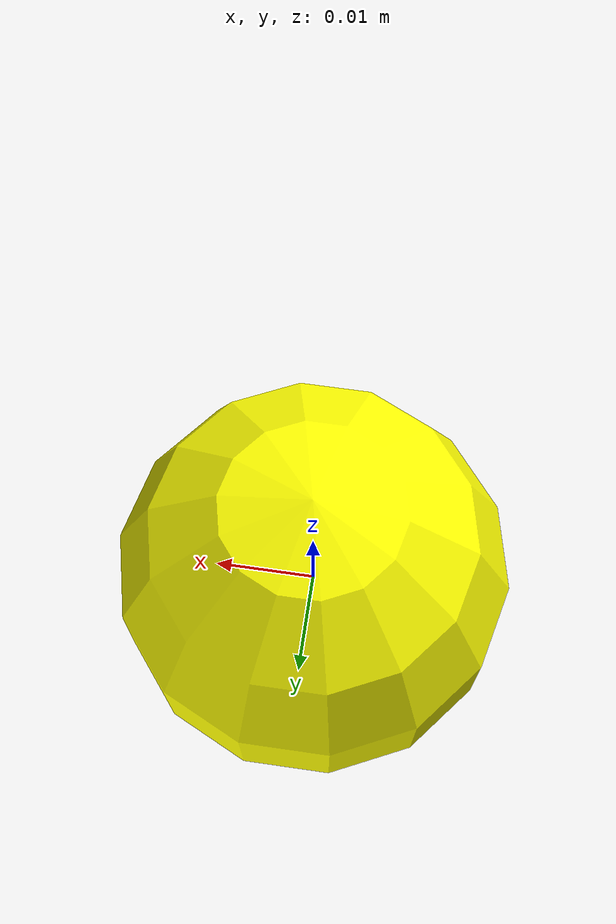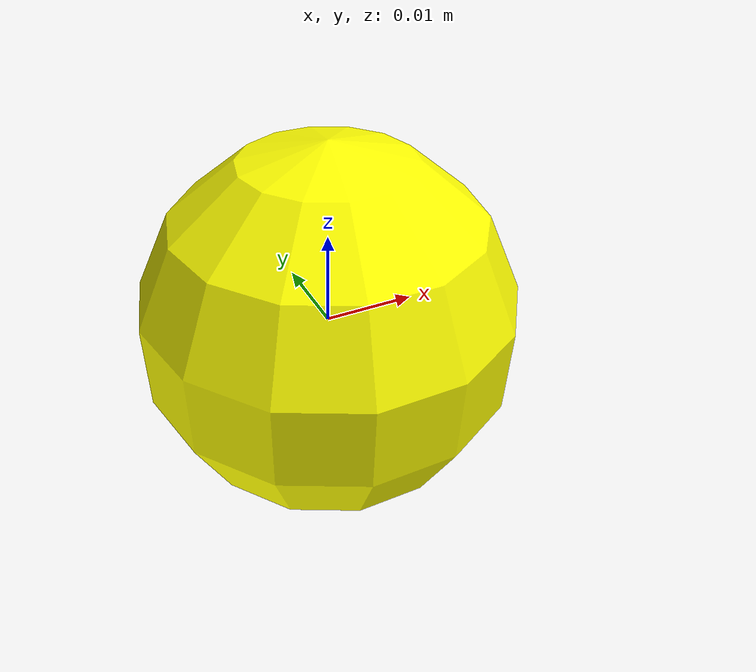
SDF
<?xml version='1.0'?>
<sdf version="1.4">
  <model name="ping_pong_ball">
    <static>false</static>
    <link name="body">
      <inertial>
        <mass>0.0027</mass>
      </inertial>
      <visual name='visual'>
        <geometry>
          <mesh>
            <uri>model://ping_pong_ball/meshes/ball.dae</uri>
          </mesh>
        </geometry>
      </visual>
      <collision name="collision">
        <geometry>
          <sphere>
            <radius>0.02</radius>
          </sphere>
        </geometry>
        <surface>
          <bounce>
            <restitution_coefficient>0.82</restitution_coefficient>
            <threshold>0</threshold>
          </bounce>
          <friction>
            <ode>
              <mu>0.01</mu>
              <mu2>0.01</mu2>
            </ode>
          </friction>
          <contact>
            <ode>
              <max_vel>1000</max_vel>
            </ode>
          </contact>
        </surface>
      </collision>
    </link>
  </model>
</sdf>
